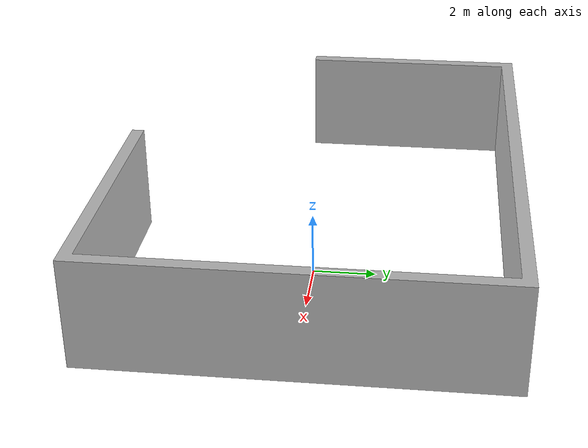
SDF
<?xml version="1.0"?>
<sdf version="1.5">
    <model name="0_wall_6">
        <static>true</static>
        <link name="link">
            <collision name="collision1">
                <pose>0 0 0 0 0 0</pose>
                <geometry>
                    <mesh>
                        <uri>meshes/0_wall_6.dae</uri>
                    </mesh>
                </geometry>
            </collision>
            <visual name="visual1">
              <pose>0 0 0 0 0 0</pose>
              <geometry>
              <mesh>
                 <uri>meshes/0_wall_6.dae</uri>
              </mesh>
              </geometry>
             </visual>
        </link>
    </model>
</sdf>
